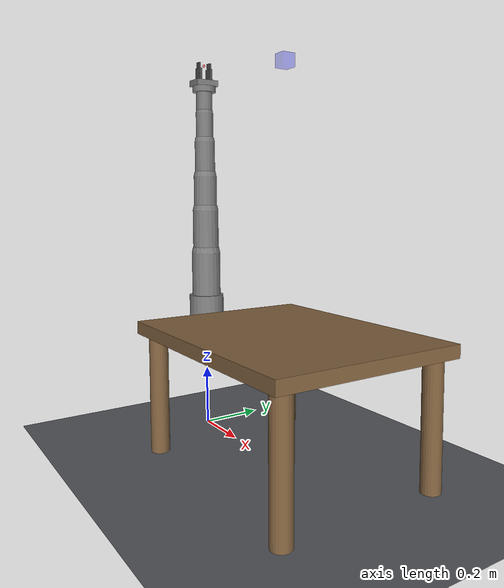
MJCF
<!-- Panda-like robot arm for e-waste disassembly -->
<mujoco model="disassembly_arm">
  <compiler angle="radian" meshdir="../meshes/"/>

  <option timestep="0.002" gravity="0 0 -9.81" integrator="implicitfast"/>

  <visual>
    <global offwidth="2560" offheight="1440"/>
  </visual>

  <default>
    <joint damping="1.0" armature="0.1"/>
    <geom condim="4" friction="1.0 0.005 0.0001"/>
    <motor ctrllimited="true"/>
    <default class="robot">
      <geom rgba="0.5 0.5 0.5 1"/>
    </default>
    <default class="finger">
      <geom rgba="0.3 0.3 0.3 1" friction="2.0 0.01 0.001"/>
    </default>
    <default class="visual">
      <geom contype="0" conaffinity="0" group="1"/>
    </default>
  </default>

  <asset>
    <texture name="grid" type="2d" builtin="checker" rgb1="0.32 0.33 0.35"
             rgb2="0.36 0.37 0.39" width="512" height="512"/>
    <texture name="wood_tex" type="2d" builtin="gradient" rgb1="0.55 0.42 0.28"
             rgb2="0.48 0.36 0.22" width="256" height="256"/>
    <material name="grid_mat" texture="grid" texrepeat="10 10" reflectance="0.04"
              specular="0.15" shininess="0.3"/>
    <material name="robot_mat" rgba="0.72 0.72 0.74 1" specular="0.6" shininess="0.7"
              reflectance="0.08"/>
    <material name="workbench_mat" texture="wood_tex" texrepeat="3 2" specular="0.15"
              shininess="0.2" reflectance="0.03"/>
  </asset>

  <worldbody>
    <!-- Ground plane -->
    <geom name="floor" type="plane" size="1.5 1.5 0.01" material="grid_mat"/>

    <!-- Workbench -->
    <body name="workbench" pos="0.5 0 0.4">
      <geom name="table_top" type="box" size="0.4 0.3 0.02" material="workbench_mat"
            mass="50" contype="1" conaffinity="1"/>
      <geom name="leg1" type="cylinder" size="0.03 0.2" pos="-0.35 -0.25 -0.22"
            material="workbench_mat" mass="5"/>
      <geom name="leg2" type="cylinder" size="0.03 0.2" pos="0.35 -0.25 -0.22"
            material="workbench_mat" mass="5"/>
      <geom name="leg3" type="cylinder" size="0.03 0.2" pos="-0.35 0.25 -0.22"
            material="workbench_mat" mass="5"/>
      <geom name="leg4" type="cylinder" size="0.03 0.2" pos="0.35 0.25 -0.22"
            material="workbench_mat" mass="5"/>
    </body>

    <!-- 7-DOF Robot Arm (Panda-like kinematics) -->
    <body name="base_link" pos="0 0 0.42" childclass="robot">
      <geom type="cylinder" size="0.06 0.05" mass="2"/>
      <body name="link1" pos="0 0 0.05">
        <joint name="joint1" type="hinge" axis="0 0 1" range="-2.8973 2.8973"/>
        <geom type="capsule" fromto="0 0 0 0 0 0.15" size="0.05" mass="3"/>
        <body name="link2" pos="0 0 0.15">
          <joint name="joint2" type="hinge" axis="0 1 0" range="-1.7628 1.7628"/>
          <geom type="capsule" fromto="0 0 0 0 0 0.15" size="0.045" mass="2.5"/>
          <body name="link3" pos="0 0 0.15">
            <joint name="joint3" type="hinge" axis="0 0 1" range="-2.8973 2.8973"/>
            <geom type="capsule" fromto="0 0 0 0 0 0.12" size="0.04" mass="2"/>
            <body name="link4" pos="0 0 0.12">
              <joint name="joint4" type="hinge" axis="0 -1 0" range="-3.0718 -0.0698"/>
              <geom type="capsule" fromto="0 0 0 0 0 0.12" size="0.035" mass="1.5"/>
              <body name="link5" pos="0 0 0.12">
                <joint name="joint5" type="hinge" axis="0 0 1" range="-2.8973 2.8973"/>
                <geom type="capsule" fromto="0 0 0 0 0 0.1" size="0.03" mass="1.2"/>
                <body name="link6" pos="0 0 0.1">
                  <joint name="joint6" type="hinge" axis="0 1 0" range="-0.0175 3.7525"/>
                  <geom type="capsule" fromto="0 0 0 0 0 0.08" size="0.028" mass="1"/>
                  <body name="link7" pos="0 0 0.08">
                    <joint name="joint7" type="hinge" axis="0 0 1" range="-2.8973 2.8973"/>
                    <geom type="cylinder" size="0.04 0.01" mass="0.5"/>

                    <!-- Parallel Gripper -->
                    <body name="gripper_base" pos="0 0 0.02">
                      <geom type="box" size="0.03 0.04 0.01" mass="0.3"/>

                      <!-- Left finger -->
                      <body name="left_finger" pos="0 -0.02 0.02" childclass="finger">
                        <joint name="finger_left" type="slide" axis="0 1 0"
                               range="0 0.04" damping="10" stiffness="5"/>
                        <geom type="box" size="0.015 0.005 0.03" mass="0.05"/>
                        <geom name="left_fingertip" type="box" size="0.01 0.003 0.01"
                              pos="0 0 0.04" mass="0.02"/>
                      </body>

                      <!-- Right finger -->
                      <body name="right_finger" pos="0 0.02 0.02" childclass="finger">
                        <joint name="finger_right" type="slide" axis="0 -1 0"
                               range="0 0.04" damping="10" stiffness="5"/>
                        <geom type="box" size="0.015 0.005 0.03" mass="0.05"/>
                        <geom name="right_fingertip" type="box" size="0.01 0.003 0.01"
                              pos="0 0 0.04" mass="0.02"/>
                      </body>

                      <!-- Wrist camera site -->
                      <site name="wrist_cam" pos="0 0 -0.01" euler="0 3.14159 0"
                            type="box" size="0.01 0.01 0.01" rgba="0 0 1 0.3"/>

                      <!-- End-effector site for control -->
                      <site name="ee_site" pos="0 0 0.06" type="sphere"
                            size="0.005" rgba="1 0 0 0.5"/>

                      <!-- Force/torque sensor site -->
                      <site name="ft_sensor" pos="0 0 0" type="sphere"
                            size="0.003" rgba="0 1 0 0.3"/>
                    </body>
                  </body>
                </body>
              </body>
            </body>
          </body>
        </body>
      </body>
    </body>

    <!-- Top-down camera -->
    <body name="overhead_cam_mount" pos="0.5 0 1.2">
      <site name="overhead_cam" type="box" size="0.02 0.02 0.02" rgba="0 0 1 0.3"/>
    </body>

    <!-- Lighting — cinematic 3-point setup -->
    <!-- Key light: bright warm overhead spotlight on the device -->
    <light name="key_light" pos="0.5 -0.3 1.4" dir="0 0.15 -1" diffuse="0.9 0.85 0.8"
           specular="0.5 0.5 0.5" cutoff="55"/>
    <!-- Fill light: softer, cooler, from the side to lift shadows -->
    <light name="fill_light" pos="-0.3 0.5 1.0" dir="0.3 -0.2 -0.8" diffuse="0.35 0.38 0.42"
           specular="0.1 0.1 0.1" cutoff="80"/>
    <!-- Rim / back light: subtle edge highlighting -->
    <light name="rim_light" pos="0.5 0.5 1.3" dir="0 -0.4 -0.8" diffuse="0.25 0.25 0.3"
           specular="0.2 0.2 0.2" cutoff="70"/>
    <!-- Ambient: low-level fill so nothing is pure black -->
    <light name="ambient" pos="0 0 2" diffuse="0.18 0.18 0.20" directional="true"/>
  </worldbody>

  <actuator>
    <motor name="act_joint1" joint="joint1" ctrlrange="-87 87"/>
    <motor name="act_joint2" joint="joint2" ctrlrange="-87 87"/>
    <motor name="act_joint3" joint="joint3" ctrlrange="-87 87"/>
    <motor name="act_joint4" joint="joint4" ctrlrange="-87 87"/>
    <motor name="act_joint5" joint="joint5" ctrlrange="-12 12"/>
    <motor name="act_joint6" joint="joint6" ctrlrange="-12 12"/>
    <motor name="act_joint7" joint="joint7" ctrlrange="-12 12"/>
    <motor name="act_finger_left" joint="finger_left" ctrlrange="0 0.04"/>
    <motor name="act_finger_right" joint="finger_right" ctrlrange="0 0.04"/>
  </actuator>

  <sensor>
    <jointpos name="joint1_pos" joint="joint1"/>
    <jointpos name="joint2_pos" joint="joint2"/>
    <jointpos name="joint3_pos" joint="joint3"/>
    <jointpos name="joint4_pos" joint="joint4"/>
    <jointpos name="joint5_pos" joint="joint5"/>
    <jointpos name="joint6_pos" joint="joint6"/>
    <jointpos name="joint7_pos" joint="joint7"/>
    <jointvel name="joint1_vel" joint="joint1"/>
    <jointvel name="joint2_vel" joint="joint2"/>
    <jointvel name="joint3_vel" joint="joint3"/>
    <jointvel name="joint4_vel" joint="joint4"/>
    <jointvel name="joint5_vel" joint="joint5"/>
    <jointvel name="joint6_vel" joint="joint6"/>
    <jointvel name="joint7_vel" joint="joint7"/>
    <touch name="left_finger_touch" site="ft_sensor"/>
  </sensor>
</mujoco>
